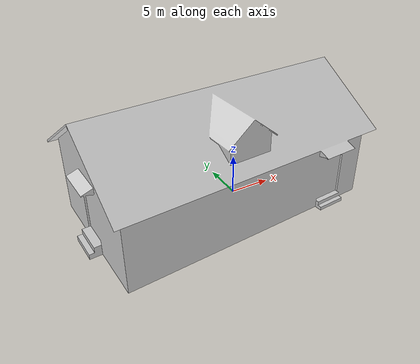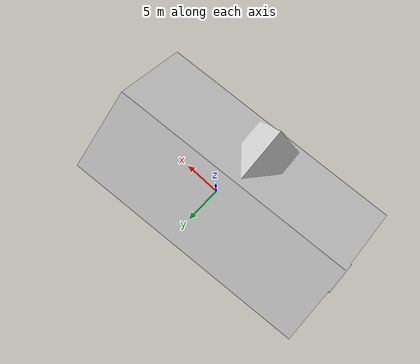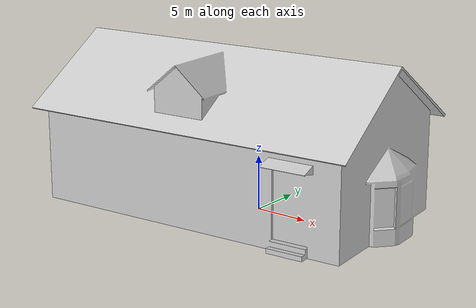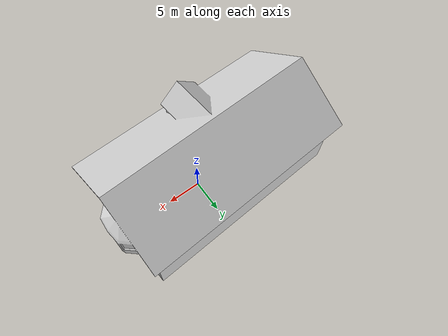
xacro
<robot name="robot">
  <link name="cottage_blender_Cube_link">
    <inertial>
      <origin xyz="0 0 0" rpy="0 0 0" />
      <mass value="1" />
      <inertia ixx="1" ixy="0" ixz="0" iyy="1" iyz="0" izz="1" />
    </inertial>
    <visual>
      <origin xyz="0 0 0" rpy="0 0 0" />
      <geometry>
        <mesh filename="package://simulation/meshes/cottage_blender_Cube.dae" />
      </geometry>
    </visual>
    <collision>
      <origin xyz="0 0 0" rpy="0 0 0" />
      <geometry>
        <mesh filename="package://simulation/meshes/cottage_blender_Cube.dae" />
      </geometry>
    </collision>
  </link>

  <gazebo reference="cottage_blender_Cube_link">
    <material>cottage_texture</material>
  </gazebo>

  <gazebo> <static>true</static></gazebo>
</robot>
